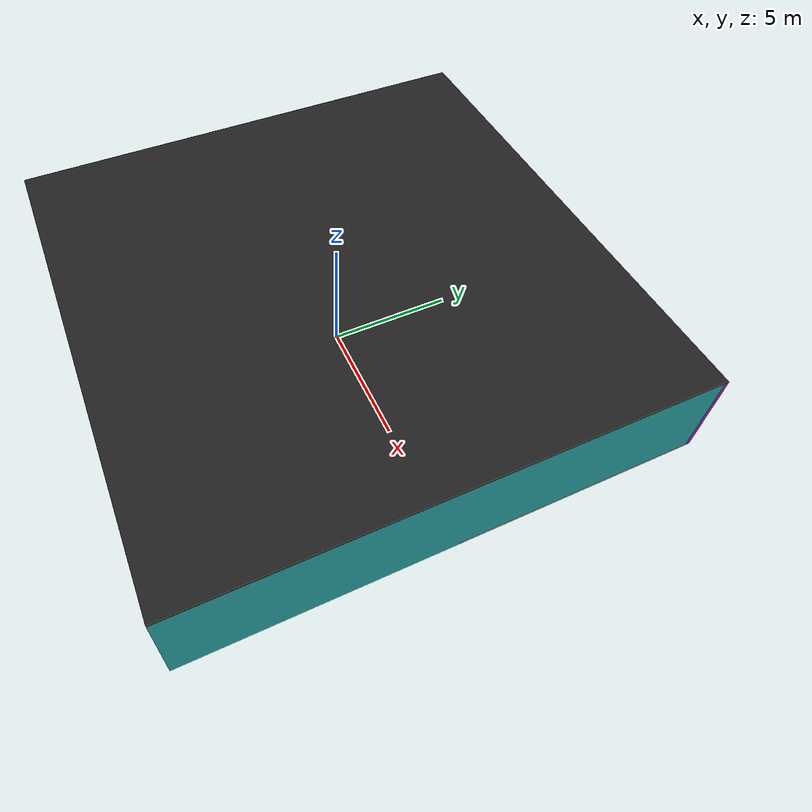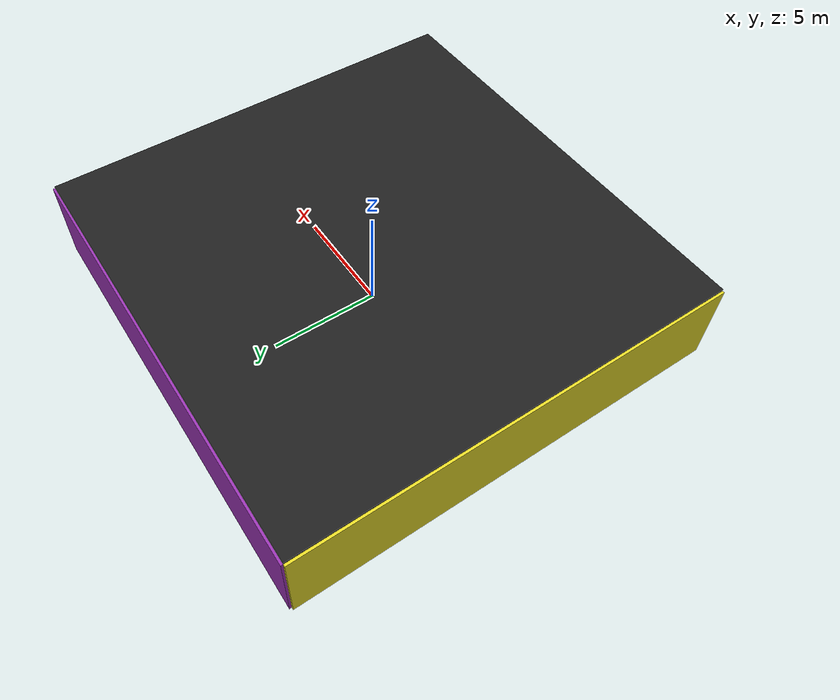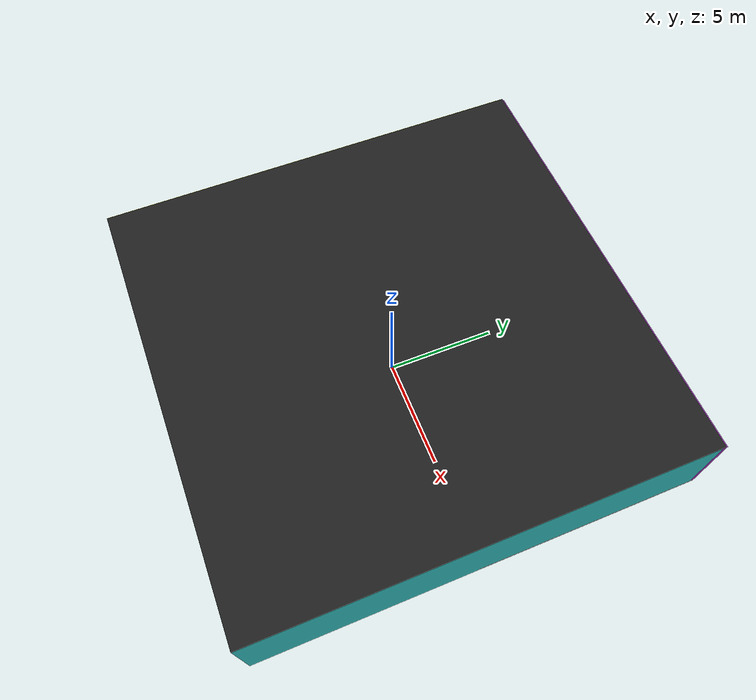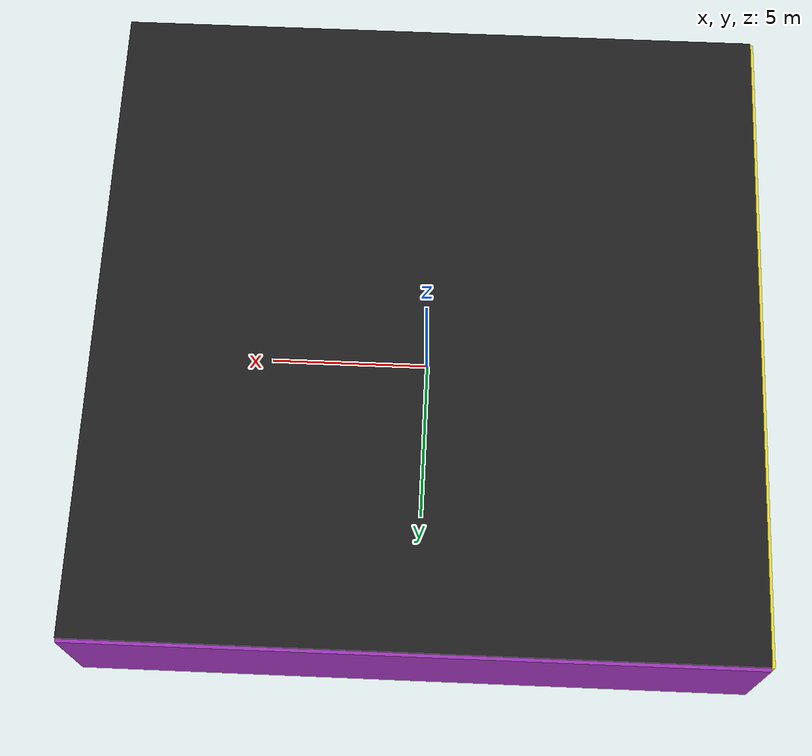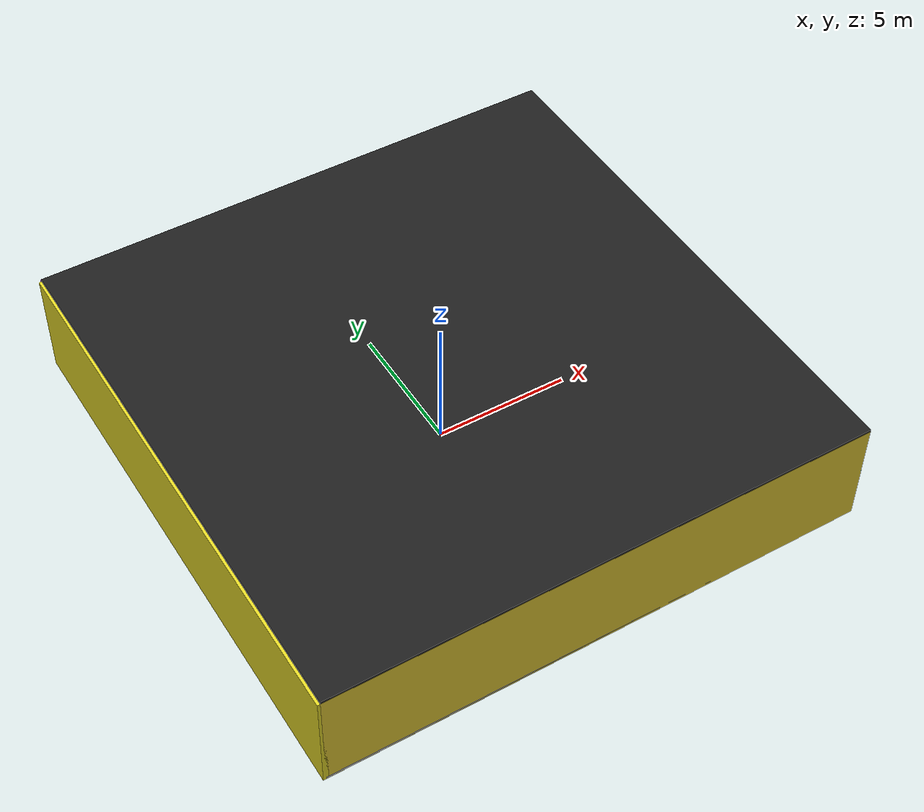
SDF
<sdf version="1.4">
 <world name="default">
  <physics type="ode">
   <max_step_size>0.001</max_step_size>
   <real_time_factor>1</real_time_factor>
   <real_time_update_rate>1000</real_time_update_rate>
   <gravity>0 0 -9.8</gravity>
  </physics>
  <scene><ambient>0.4 0.4 0.4 1</ambient><background>0.7 0.7 0.7 1</background><shadows>1</shadows></scene>
  <model name="Surrounding">
   <static>1</static>
   <link name="Ceiling">
    <collision name="Ceiling_Collision"><geometry><box><size>20 20 0.1</size></box></geometry></collision>
    <visual name="Ceiling_Visual">
     <geometry><box><size>20 20 0.1</size></box></geometry>
     <material>
      <script><uri>file://media/materials/scripts/gazebo.material</uri><name>Gazebo/FlatBlack</name></script>
     </material>
    </visual>
    <pose>0 0 4.05 0 0 0</pose>
   </link>
   <link name="Wall_South">
    <collision name="Wall_South_Collision">
     <geometry><box><size>20 0 4</size></box></geometry>
     <pose>0 0 2 0 -0 0</pose>
    </collision>
    <visual name="Wall_South_Visual">
     <pose>0 0 2 0 -0 0</pose>
     <geometry><box><size>20 0 4</size></box></geometry>
     <material>
      <script><uri>file://media/materials/scripts/gazebo.material</uri><name>Gazebo/ZincYellow</name></script>
     </material>
    </visual>
    <velocity_decay><linear>0</linear><angular>0</angular></velocity_decay>
    <pose>0 -10 0 0 -0 0</pose>
   </link>
   <link name="Wall_East">
    <collision name="Wall_21_Collision">
     <geometry><box><size>20 0 4</size></box></geometry>
     <pose>0 0 2 0 -0 0</pose>
    </collision>
    <visual name="Wall_21_Visual">
     <pose>0 0 2 0 -0 0</pose>
     <geometry><box><size>20 0 4</size></box></geometry>
     <material>
      <script>
       <uri>file://media/materials/scripts/gazebo.material</uri>
       <name>Gazebo/TurquoiseGlowOutline</name>
      </script>
     </material>
    </visual>
    <velocity_decay><linear>0</linear><angular>0</angular></velocity_decay>
    <pose>10 0 0 0 -0 1.5708</pose>
   </link>
   <link name="Wall_North">
    <collision name="Wall_22_Collision">
     <geometry><box><size>20 0.2 4</size></box></geometry>
     <pose>0 0 2 0 -0 0</pose>
    </collision>
    <visual name="Wall_22_Visual">
     <pose>0 0 2 0 -0 0</pose>
     <geometry><box><size>20 0.2 4</size></box></geometry>
     <material>
      <script><uri>file://media/materials/scripts/gazebo.material</uri><name>Gazebo/Purple</name></script>
     </material>
    </visual>
    <velocity_decay><linear>0</linear><angular>0</angular></velocity_decay>
    <pose>0 10 0 0 -0 0</pose>
   </link>
   <link name="Wall_West">
    <collision name="Wall_23_Collision">
     <geometry><box><size>20 0.2 4</size></box></geometry>
     <pose>0 0 2 0 -0 0</pose>
    </collision>
    <visual name="Wall_23_Visual">
     <pose>0 0 2 0 -0 0</pose>
     <geometry><box><size>20 0.2 4</size></box></geometry>
     <material>
      <script><uri>file://media/materials/scripts/gazebo.material</uri><name>Gazebo/Yellow</name></script>
     </material>
    </visual>
    <velocity_decay><linear>0</linear><angular>0</angular></velocity_decay>
    <pose>-10 0 0 0 0 -1.5708</pose>
   </link>
   <link name="Ground_link">
    <collision name="collision">
     <pose>0 0 .05 0 -0 0</pose>
     <geometry><box><size>20 20 0.1</size></box></geometry>
    </collision>
    <visual name="visual">
     <pose>0 0 .05 0 -0 0</pose>
     <geometry><box><size>20 20 0.1</size></box></geometry>
     <material>
      <script><uri>file://media/materials/scripts/gazebo.material</uri><name>Gazebo/LightOff</name></script>
     </material>
    </visual>
   </link>
   <static>1</static>
  </model>
  <spherical_coordinates>
   <surface_model>EARTH_WGS84</surface_model>
   <latitude_deg>0</latitude_deg>
   <longitude_deg>0</longitude_deg>
   <elevation>0</elevation>
   <heading_deg>0</heading_deg>
  </spherical_coordinates>
  <light name="lightball_0" type="diffuse">
   <diffuse>0.8 0.8 0.8 1</diffuse>
   <specular>0.2 0.2 0.2 1</specular>
   <attenuation>
    <range>100</range>
    <constant>0.7</constant>
    <linear>0.01</linear>
    <quadratic>0.001</quadratic>
   </attenuation>
   <direction>-0.5 0.1 -0.9</direction>
   <pose>2.14776662806 9.06792878076 2.53598164117 0 0 0</pose>
  </light>
  <light name="lightball_1" type="diffuse">
   <diffuse>0.8 0.8 0.8 1</diffuse>
   <specular>0.2 0.2 0.2 1</specular>
   <attenuation>
    <range>100</range>
    <constant>0.7</constant>
    <linear>0.01</linear>
    <quadratic>0.001</quadratic>
   </attenuation>
   <direction>-0.5 0.1 -0.9</direction>
   <pose>5.48300024359 8.35355570232 1.59852364974 0 0 0</pose>
  </light>
  <include>
   <uri>model://robocup_3Dsim_goal</uri>
   <pose>-6.9175694917 -4.25689697948 0 0 0 0.67381498042</pose>
  </include>
  <include>
   <uri>model://construction_cone</uri>
   <pose>-4.74362196453 -7.5208571504 0 0 0 0.0494037133273</pose>
  </include>
  <include>
   <uri>model://construction_cone</uri>
   <pose>-0.853271349906 -6.8497327688 0 0 0 1.83999740508</pose>
  </include>
  <include>
   <uri>model://construction_cone</uri>
   <pose>2.13571277621 1.97315345533 0 0 0 0.158769966685</pose>
  </include>
  <include>
   <uri>model://robocup_3Dsim_goal</uri>
   <pose>1.39727457638 7.47661747235 0 0 0 0.422565252253</pose>
  </include>
 </world>
</sdf>

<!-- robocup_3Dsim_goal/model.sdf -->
<sdf version="1.5">
  <model name="robocup_3d_goal">
    <static>true</static>
    <link name="left_post">
      <pose>0 1.05 0.45 0 0 0</pose>
      <collision name="collision">
        <geometry>
          <cylinder>
            <radius>0.05</radius>
            <length>0.9</length>
          </cylinder>
        </geometry>
      </collision>
      <visual name="visual">
        <geometry>
          <cylinder>
            <radius>0.05</radius>
            <length>0.9</length>
          </cylinder>
        </geometry>
        <material>
          <script>
            <uri>file://media/materials/scripts/gazebo.material</uri>
            <name>Gazebo/ZincYellow</name>
          </script>
        </material>
      </visual>
    </link>
    <link name="left_support_horiz_lower">
      <pose>0.30 1.05 0.01 0 0 0</pose>
      <collision name="collision">
        <geometry>
          <box>
            <size>0.50 0.02 0.02</size>
          </box>
        </geometry>
      </collision>
      <visual name="visual">
        <geometry>
          <box>
            <size>0.50 0.02 0.02</size>
          </box>
        </geometry>
        <material>
          <script>
            <uri>file://media/materials/scripts/gazebo.material</uri>
            <name>Gazebo/White</name>
          </script>
        </material>
      </visual>
    </link>
    <link name="left_support_horiz_upper">
      <pose>0.30 1.05 0.79 0 0 0</pose>
      <collision name="collision">
        <geometry>
          <box>
            <size>0.50 0.02 0.02</size>
          </box>
        </geometry>
      </collision>
      <visual name="visual">
        <geometry>
          <box>
            <size>0.50 0.02 0.02</size>
          </box>
        </geometry>
        <material>
          <script>
            <uri>file://media/materials/scripts/gazebo.material</uri>
            <name>Gazebo/White</name>
          </script>
        </material>
      </visual>
    </link>
    <link name="left_support_vertical">
      <pose>0.56 1.05 0.4 0 1.5708 0</pose>
      <collision name="collision">
        <geometry>
          <box>
            <size>0.80 0.02 0.02</size>
          </box>
        </geometry>
      </collision>
      <visual name="visual">
        <geometry>
          <box>
            <size>0.80 0.02 0.02</size>
          </box>
        </geometry>
        <material>
          <script>
            <uri>file://media/materials/scripts/gazebo.material</uri>
            <name>Gazebo/White</name>
          </script>
        </material>
      </visual>
    </link>
    <link name="right_support_horiz_lower">
      <pose>0.30 -1.05 0.01 0 0 0</pose>
      <collision name="collision">
        <geometry>
          <box>
            <size>0.50 0.02 0.02</size>
          </box>
        </geometry>
      </collision>
      <visual name="visual">
        <geometry>
          <box>
            <size>0.50 0.02 0.02</size>
          </box>
        </geometry>
        <material>
          <script>
            <uri>file://media/materials/scripts/gazebo.material</uri>
            <name>Gazebo/White</name>
          </script>
        </material>
      </visual>
    </link>
    <link name="right_support_horiz_upper">
      <pose>0.30 -1.05 0.79 0 0 0</pose>
      <collision name="collision">
        <geometry>
          <box>
            <size>0.50 0.02 0.02</size>
          </box>
        </geometry>
      </collision>
      <visual name="visual">
        <geometry>
          <box>
            <size>0.50 0.02 0.02</size>
          </box>
        </geometry>
        <material>
          <script>
            <uri>file://media/materials/scripts/gazebo.material</uri>
            <name>Gazebo/White</name>
          </script>
        </material>
      </visual>
    </link>
    <link name="right_support_vertical">
      <pose>0.56 -1.05 0.4 0 1.5708 0</pose>
      <collision name="collision">
        <geometry>
          <box>
            <size>0.80 0.02 0.02</size>
          </box>
        </geometry>
      </collision>
      <visual name="visual">
        <geometry>
          <box>
            <size>0.80 0.02 0.02</size>
          </box>
        </geometry>
        <material>
          <script>
            <uri>file://media/materials/scripts/gazebo.material</uri>
            <name>Gazebo/White</name>
          </script>
        </material>
      </visual>
    </link>
    <link name="center_support_horiz_lower">
      <pose>0.56 0 0.01 0 1.5708 0</pose>
      <collision name="collision">
        <geometry>
          <box>
            <size>0.02 2.08 0.02</size>
          </box>
        </geometry>
      </collision>
      <visual name="visual">
        <geometry>
          <box>
            <size>0.02 2.08 0.02</size>
          </box>
        </geometry>
        <material>
          <script>
            <uri>file://media/materials/scripts/gazebo.material</uri>
            <name>Gazebo/White</name>
          </script>
        </material>
      </visual>
    </link>
    <link name="center_support_horiz_upper">
      <pose>0.56 0 0.79 0 1.5708 0</pose>
      <collision name="collision">
        <geometry>
          <box>
            <size>0.02 2.08 0.02</size>
          </box>
        </geometry>
      </collision>
      <visual name="visual">
        <geometry>
          <box>
            <size>0.02 2.08 0.02</size>
          </box>
        </geometry>
        <material>
          <script>
            <uri>file://media/materials/scripts/gazebo.material</uri>
            <name>Gazebo/White</name>
          </script>
        </material>
      </visual>
    </link>
    <link name="right_post">
      <pose>0 -1.05 0.45 0 0 0</pose>
      <collision name="collision">
        <geometry>
          <cylinder>
            <radius>0.05</radius>
            <length>0.9</length>
          </cylinder>
        </geometry>
      </collision>
      <visual name="visual">
        <geometry>
          <cylinder>
            <radius>0.05</radius>
            <length>0.9</length>
          </cylinder>
        </geometry>
        <material>
          <script>
            <uri>file://media/materials/scripts/gazebo.material</uri>
            <name>Gazebo/ZincYellow</name>
          </script>
        </material>
      </visual>
    </link>
    <link name="crossbar">
      <pose>0 0 0.85 1.57 1.57 0</pose>
      <collision name="collision">
        <geometry>
          <cylinder>
            <radius>0.05</radius>
            <length>2.0</length>
          </cylinder>
        </geometry>
      </collision>
      <visual name="visual">
        <geometry>
          <cylinder>
            <radius>0.05</radius>
            <length>2.0</length>
          </cylinder>
        </geometry>
        <material>
          <script>
            <uri>file://media/materials/scripts/gazebo.material</uri>
            <name>Gazebo/ZincYellow</name>
          </script>
        </material>
      </visual>
    </link>
    <link name="center_net">
      <pose>0.56 0 0.40 0 0 0</pose>
      <collision name="collision">
        <geometry>
          <box>
            <size>0.01 2.1 0.80</size>
          </box>
        </geometry>
      </collision>
      <visual name="visual">
        <geometry>
          <box>
            <size>0.01 2.1 0.80</size>
          </box>
        </geometry>
        <material>
          <script>
            <uri>model://../model_source/models/robocup09_spl_field/materials/scripts/</uri>
            <uri>model://../model_source/models/robocup09_spl_field/materials/textures/</uri>
            <name>RoboCup/Net</name>
          </script>
        </material>
      </visual>
    </link>
    <link name="left_net">
      <pose>0.30 1.05 0.40 0 0 0</pose>
      <collision name="collision">
        <geometry>
          <box>
            <size>0.50 0.01 0.76</size>
          </box>
        </geometry>
      </collision>
      <visual name="visual">
        <geometry>
          <box>
            <size>0.50 0.01 0.76</size>
          </box>
        </geometry>
        <material>
          <script>
            <uri>model://../model_source/models/robocup09_spl_field/materials/scripts/</uri>
            <uri>model://../model_source/models/robocup09_spl_field/materials/textures/</uri>
            <name>RoboCup/Net</name>
          </script>
        </material>
      </visual>
    </link>
    <link name="right_net">
      <pose>0.30 -1.05 0.40 0 0 0</pose>
      <collision name="collision">
        <geometry>
          <box>
            <size>0.50 0.01 0.76</size>
          </box>
        </geometry>
      </collision>
      <visual name="visual">
        <geometry>
          <box>
            <size>0.50 0.01 0.76</size>
          </box>
        </geometry>
        <material>
          <script>
            <uri>model://../model_source/models/robocup09_spl_field/materials/scripts/</uri>
            <uri>model://../model_source/models/robocup09_spl_field/materials/textures/</uri>
            <name>RoboCup/Net</name>
          </script>
        </material>
      </visual>
    </link>
  </model>
</sdf>

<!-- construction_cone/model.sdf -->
<sdf version="1.5">
  <model name="Construction Cone">
    <link name="link">
      <collision name="collision">
        <geometry>
          <mesh>
            <scale>10 10 10</scale>
            <uri>file://isr-testbed/construction_cone/meshes/construction_cone.dae</uri>
          </mesh>
        </geometry>
      </collision>
      <visual name="visual">
        <geometry>
          <mesh>
            <scale>10 10 10</scale>
            <uri>file://isr-testbed/construction_cone/meshes/construction_cone.dae</uri>
          </mesh>
        </geometry>
      </visual>
    </link>
  </model>
</sdf>
